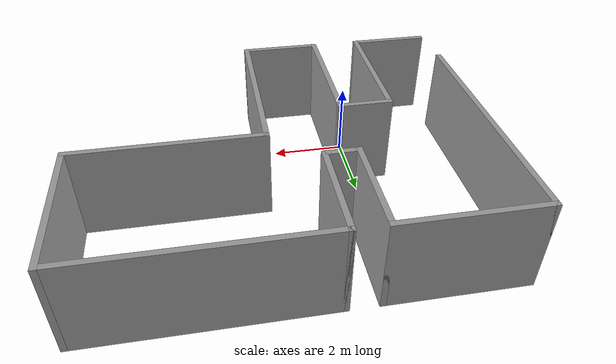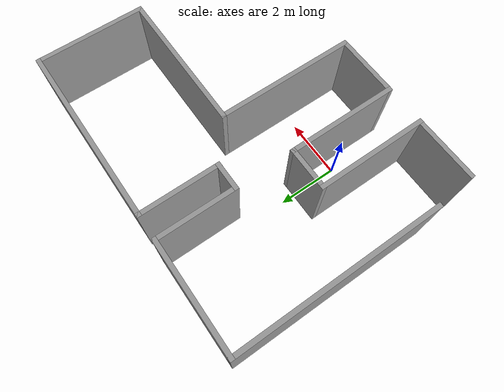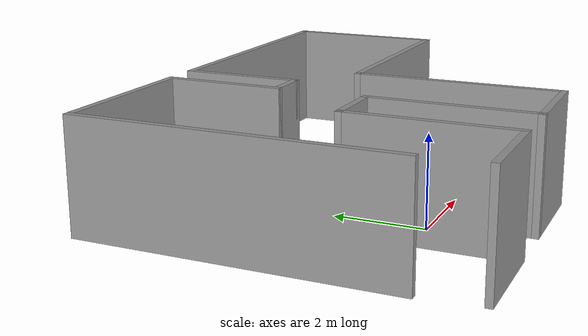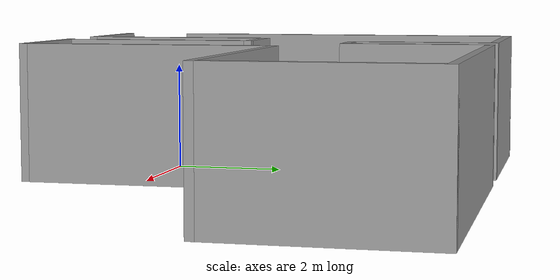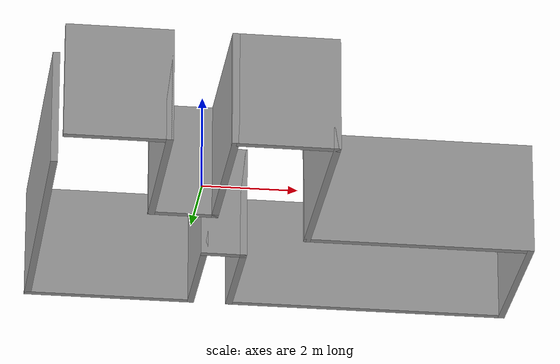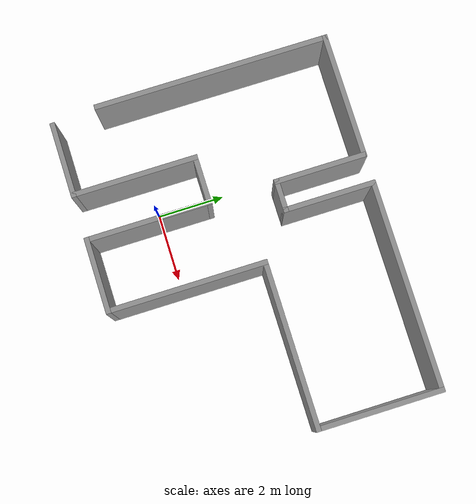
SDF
<?xml version='1.0'?>
<sdf version='1.7'>
  <model name='i_robotlab_room'>
    <pose>2.125 2.01 0 0 -0 0</pose>
    <link name='Wall_0'>
      <collision name='Wall_0_Collision'>
        <geometry>
          <box>
            <size>7 0.15 2.5</size>
          </box>
        </geometry>
        <pose>0 0 1.25 0 -0 0</pose>
      </collision>
      <visual name='Wall_0_Visual'>
        <pose>0 0 1.25 0 -0 0</pose>
        <geometry>
          <box>
            <size>7 0.15 2.5</size>
          </box>
        </geometry>
        <material>
          <script>
            <uri>file://media/materials/scripts/gazebo.material</uri>
            <name>Gazebo/Grey</name>
          </script>
          <ambient>1 1 1 1</ambient>
        </material>
        <meta>
          <layer>0</layer>
        </meta>
      </visual>
      <pose>-5.275 0.675 0 0 -0 1.5708</pose>
    </link>
    <link name='Wall_1'>
      <collision name='Wall_1_Collision'>
        <geometry>
          <box>
            <size>3.75 0.15 2.5</size>
          </box>
        </geometry>
        <pose>0 0 1.25 0 -0 0</pose>
      </collision>
      <visual name='Wall_1_Visual'>
        <pose>0 0 1.25 0 -0 0</pose>
        <geometry>
          <box>
            <size>3.75 0.15 2.5</size>
          </box>
        </geometry>
        <material>
          <script>
            <uri>file://media/materials/scripts/gazebo.material</uri>
            <name>Gazebo/Grey</name>
          </script>
          <ambient>1 1 1 1</ambient>
        </material>
        <meta>
          <layer>0</layer>
        </meta>
      </visual>
      <pose>-3.475 4.1 0 0 -0 0</pose>
    </link>
    <link name='Wall_10'>
      <collision name='Wall_10_Collision'>
        <geometry>
          <box>
            <size>3.75 0.15 2.5</size>
          </box>
        </geometry>
        <pose>0 0 1.25 0 -0 0</pose>
      </collision>
      <visual name='Wall_10_Visual'>
        <pose>0 0 1.25 0 -0 0</pose>
        <geometry>
          <box>
            <size>3.75 0.15 2.5</size>
          </box>
        </geometry>
        <material>
          <script>
            <uri>file://media/materials/scripts/gazebo.material</uri>
            <name>Gazebo/Grey</name>
          </script>
          <ambient>1 1 1 1</ambient>
        </material>
        <meta>
          <layer>0</layer>
        </meta>
      </visual>
      <pose>-1.675 -2.3 0 0 -0 1.5708</pose>
    </link>
    <link name='Wall_11'>
      <collision name='Wall_11_Collision'>
        <geometry>
          <box>
            <size>1.5 0.15 2.5</size>
          </box>
        </geometry>
        <pose>0 0 1.25 0 -0 0</pose>
      </collision>
      <visual name='Wall_11_Visual'>
        <pose>0 0 1.25 0 -0 0</pose>
        <geometry>
          <box>
            <size>1.5 0.15 2.5</size>
          </box>
        </geometry>
        <material>
          <script>
            <uri>file://media/materials/scripts/gazebo.material</uri>
            <name>Gazebo/Grey</name>
          </script>
          <ambient>1 1 1 1</ambient>
        </material>
        <meta>
          <layer>0</layer>
        </meta>
      </visual>
      <pose>-2.35 -0.5 0 0 -0 3.14159</pose>
    </link>
    <link name='Wall_12'>
      <collision name='Wall_12_Collision'>
        <geometry>
          <box>
            <size>3.75 0.15 2.5</size>
          </box>
        </geometry>
        <pose>0 0 1.25 0 -0 0</pose>
      </collision>
      <visual name='Wall_12_Visual'>
        <pose>0 0 1.25 0 -0 0</pose>
        <geometry>
          <box>
            <size>3.75 0.15 2.5</size>
          </box>
        </geometry>
        <material>
          <script>
            <uri>file://media/materials/scripts/gazebo.material</uri>
            <name>Gazebo/Grey</name>
          </script>
          <ambient>1 1 1 1</ambient>
        </material>
        <meta>
          <layer>0</layer>
        </meta>
      </visual>
      <pose>-3.025 -2.3 0 0 -0 -1.5708</pose>
    </link>
    <link name='Wall_13'>
      <collision name='Wall_13_Collision'>
        <geometry>
          <box>
            <size>2.25 0.15 2.5</size>
          </box>
        </geometry>
        <pose>0 0 1.25 0 -0 0</pose>
      </collision>
      <visual name='Wall_13_Visual'>
        <pose>0 0 1.25 0 -0 0</pose>
        <geometry>
          <box>
            <size>2.25 0.15 2.5</size>
          </box>
        </geometry>
        <material>
          <script>
            <uri>file://media/materials/scripts/gazebo.material</uri>
            <name>Gazebo/Grey</name>
          </script>
          <ambient>1 1 1 1</ambient>
        </material>
        <meta>
          <layer>0</layer>
        </meta>
      </visual>
      <pose>-4.075 -4.1 0 0 -0 3.14159</pose>
    </link>
    <link name='Wall_2'>
      <collision name='Wall_2_Collision'>
        <geometry>
          <box>
            <size>2.75 0.15 2.5</size>
          </box>
        </geometry>
        <pose>0 0 1.25 0 -0 0</pose>
      </collision>
      <visual name='Wall_2_Visual'>
        <pose>0 0 1.25 0 -0 0</pose>
        <geometry>
          <box>
            <size>2.75 0.15 2.5</size>
          </box>
        </geometry>
        <material>
          <script>
            <uri>file://media/materials/scripts/gazebo.material</uri>
            <name>Gazebo/Grey</name>
          </script>
          <ambient>1 1 1 1</ambient>
        </material>
        <meta>
          <layer>0</layer>
        </meta>
      </visual>
      <pose>-1.675 2.8 0 0 -0 -1.5708</pose>
    </link>
    <link name='Wall_3'>
      <collision name='Wall_3_Collision'>
        <geometry>
          <box>
            <size>1 0.15 2.5</size>
          </box>
        </geometry>
        <pose>0 0 1.25 0 -0 0</pose>
      </collision>
      <visual name='Wall_3_Visual'>
        <pose>0 0 1.25 0 -0 0</pose>
        <geometry>
          <box>
            <size>1 0.15 2.5</size>
          </box>
        </geometry>
        <material>
          <script>
            <uri>file://media/materials/scripts/gazebo.material</uri>
            <name>Gazebo/Grey</name>
          </script>
          <ambient>1 1 1 1</ambient>
        </material>
        <meta>
          <layer>0</layer>
        </meta>
      </visual>
      <pose>-1.25 1.5 0 0 -0 0</pose>
    </link>
    <link name='Wall_4'>
      <collision name='Wall_4_Collision'>
        <geometry>
          <box>
            <size>2.75 0.15 2.5</size>
          </box>
        </geometry>
        <pose>0 0 1.25 0 -0 0</pose>
      </collision>
      <visual name='Wall_4_Visual'>
        <pose>0 0 1.25 0 -0 0</pose>
        <geometry>
          <box>
            <size>2.75 0.15 2.5</size>
          </box>
        </geometry>
        <material>
          <script>
            <uri>file://media/materials/scripts/gazebo.material</uri>
            <name>Gazebo/Grey</name>
          </script>
          <ambient>1 1 1 1</ambient>
        </material>
        <meta>
          <layer>0</layer>
        </meta>
      </visual>
      <pose>-0.825 2.8 0 0 -0 1.5708</pose>
    </link>
    <link name='Wall_5'>
      <collision name='Wall_5_Collision'>
        <geometry>
          <box>
            <size>6.25 0.15 2.5</size>
          </box>
        </geometry>
        <pose>0 0 1.25 0 -0 0</pose>
      </collision>
      <visual name='Wall_5_Visual'>
        <pose>0 0 1.25 0 -0 0</pose>
        <geometry>
          <box>
            <size>6.25 0.15 2.5</size>
          </box>
        </geometry>
        <material>
          <script>
            <uri>file://media/materials/scripts/gazebo.material</uri>
            <name>Gazebo/Grey</name>
          </script>
          <ambient>1 1 1 1</ambient>
        </material>
        <meta>
          <layer>0</layer>
        </meta>
      </visual>
      <pose>2.225 4.1 0 0 -0 0</pose>
    </link>
    <link name='Wall_6'>
      <collision name='Wall_6_Collision'>
        <geometry>
          <box>
            <size>3.75 0.15 2.5</size>
          </box>
        </geometry>
        <pose>0 0 1.25 0 -0 0</pose>
      </collision>
      <visual name='Wall_6_Visual'>
        <pose>0 0 1.25 0 -0 0</pose>
        <geometry>
          <box>
            <size>3.75 0.15 2.5</size>
          </box>
        </geometry>
        <material>
          <script>
            <uri>file://media/materials/scripts/gazebo.material</uri>
            <name>Gazebo/Grey</name>
          </script>
          <ambient>1 1 1 1</ambient>
        </material>
        <meta>
          <layer>0</layer>
        </meta>
      </visual>
      <pose>5.275 2.3 0 0 -0 -1.5708</pose>
    </link>
    <link name='Wall_7'>
      <collision name='Wall_7_Collision'>
        <geometry>
          <box>
            <size>5 0.15 2.5</size>
          </box>
        </geometry>
        <pose>0 0 1.25 0 -0 0</pose>
      </collision>
      <visual name='Wall_7_Visual'>
        <pose>0 0 1.25 0 -0 0</pose>
        <geometry>
          <box>
            <size>5 0.15 2.5</size>
          </box>
        </geometry>
        <material>
          <script>
            <uri>file://media/materials/scripts/gazebo.material</uri>
            <name>Gazebo/Grey</name>
          </script>
          <ambient>1 1 1 1</ambient>
        </material>
        <meta>
          <layer>0</layer>
        </meta>
      </visual>
      <pose>2.85 0.5 0 0 -0 3.14159</pose>
    </link>
    <link name='Wall_8'>
      <collision name='Wall_8_Collision'>
        <geometry>
          <box>
            <size>4.75 0.15 2.5</size>
          </box>
        </geometry>
        <pose>0 0 1.25 0 -0 0</pose>
      </collision>
      <visual name='Wall_8_Visual'>
        <pose>0 0 1.25 0 -0 0</pose>
        <geometry>
          <box>
            <size>4.75 0.15 2.5</size>
          </box>
        </geometry>
        <material>
          <script>
            <uri>file://media/materials/scripts/gazebo.material</uri>
            <name>Gazebo/Grey</name>
          </script>
          <ambient>1 1 1 1</ambient>
        </material>
        <meta>
          <layer>0</layer>
        </meta>
      </visual>
      <pose>0.425 -1.8 0 0 -0 -1.5708</pose>
    </link>
    <link name='Wall_9'>
      <collision name='Wall_9_Collision'>
        <geometry>
          <box>
            <size>2.25 0.15 2.5</size>
          </box>
        </geometry>
        <pose>0 0 1.25 0 -0 0</pose>
      </collision>
      <visual name='Wall_9_Visual'>
        <pose>0 0 1.25 0 -0 0</pose>
        <geometry>
          <box>
            <size>2.25 0.15 2.5</size>
          </box>
        </geometry>
        <material>
          <script>
            <uri>file://media/materials/scripts/gazebo.material</uri>
            <name>Gazebo/Grey</name>
          </script>
          <ambient>1 1 1 1</ambient>
        </material>
        <meta>
          <layer>0</layer>
        </meta>
      </visual>
      <pose>-0.625 -4.1 0 0 -0 3.14159</pose>
    </link>
    <static>1</static>
  </model>
</sdf>
